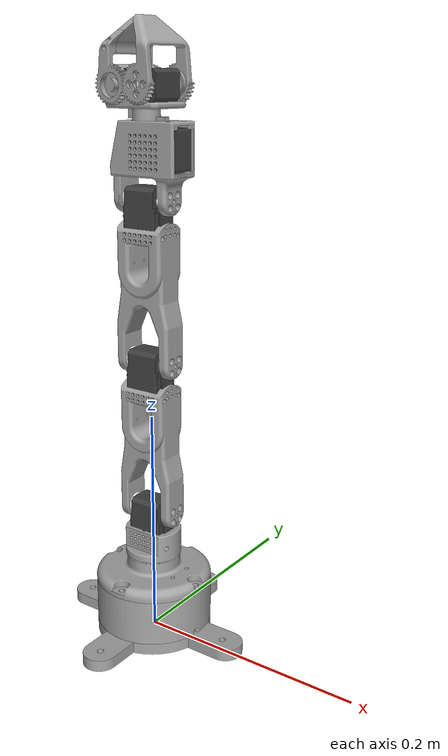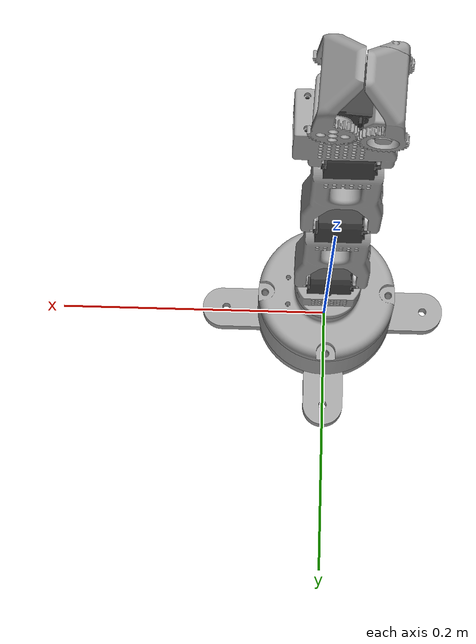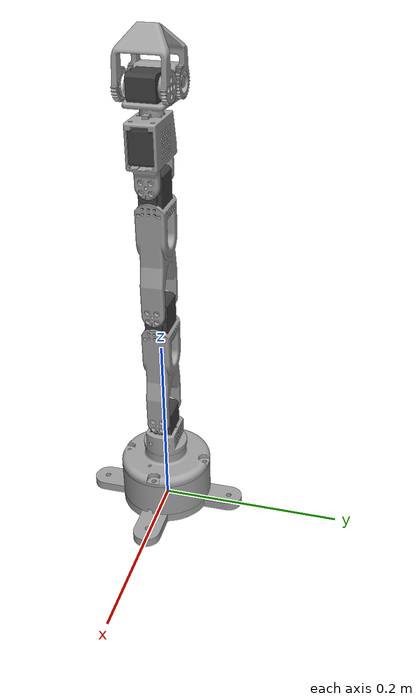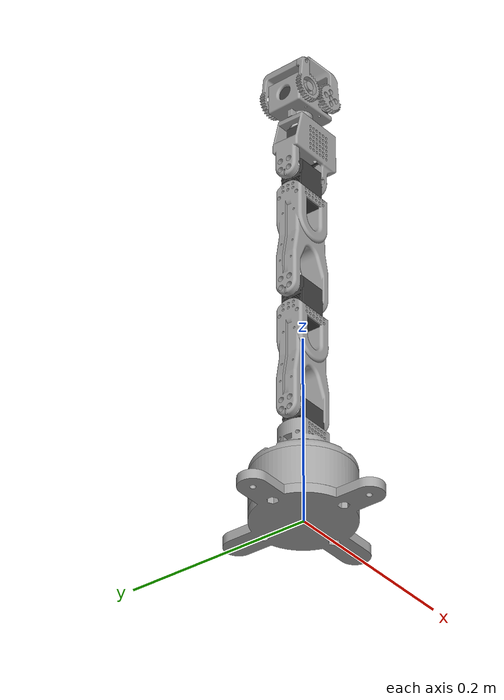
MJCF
<mujoco model="robot_urdf">
  <compiler angle="radian" meshdir="assets/"/>

  <default>
    <default class="jdcobot200_calib">
      <joint damping="1" frictionloss="0.1" armature="0.005"/>
      <position kp="50"/>
      <default class="visual">
        <geom type="mesh" contype="0" conaffinity="0" group="2"/>
      </default>
      <default class="collision">
        <geom contype="0" conaffinity="0" group="3"/>
      </default>
    </default>
  </default>

  <default>
    <default class="sts3215">
      <geom contype="0" conaffinity="0"/>
      <joint damping="0.60" frictionloss="0.052" armature="0.028" limited="true"/>
      <position kp="998.22" kv="2.731" forcerange="-2.94 2.94"/>
    </default>
    <default class="backlash">
      <joint damping="0.01" frictionloss="0" armature="0.01" limited="true" range="-0.008726646259971648 0.008726646259971648"/>
    </default>
  </default>

  <asset>
    <mesh name="base_top" content_type="model/stl" file="base_top.stl"/>
    <mesh name="ac1" content_type="model/stl" file="ac1.stl"/>
    <mesh name="base_plate" content_type="model/stl" file="base_plate.stl"/>
    <mesh name="base_link" content_type="model/stl" file="base_link.stl"/>
    <mesh name="main" content_type="model/stl" file="main.stl"/>
    <mesh name="base_joint" content_type="model/stl" file="base_joint.stl"/>
    <mesh name="ac2" content_type="model/stl" file="ac2.stl"/>
    <mesh name="shoulder_link" content_type="model/stl" file="shoulder_link.stl"/>
    <mesh name="arm_link" content_type="model/stl" file="arm_link.stl"/>
    <mesh name="wrist_link___recovered" content_type="model/stl" file="wrist_link___recovered.stl"/>
    <mesh name="gripper_base" content_type="model/stl" file="gripper_base.stl"/>
    <mesh name="gripper_left" content_type="model/stl" file="gripper_left.stl"/>
    <mesh name="gripper_right" content_type="model/stl" file="gripper_right.stl"/>
    <mesh name="gripper_right_part" content_type="model/stl" file="gripper_right_part.stl"/>
  </asset>

  <worldbody>
    <body name="base_assembly" pos="0 0 0" quat="1 0 0 0" childclass="jdcobot200_calib">
      <inertial pos="0 0 0" mass="0.35" diaginertia="1e-09 1e-09 1e-09"/>
      <geom pos="0.0125 0 0.05" quat="1 0 0 0" type="mesh" rgba="0.627451 0.627451 0.627451 1" mesh="base_top"/>
      <geom pos="0.0125 0 0.0351" quat="1.32679e-06 0 0 -1" type="mesh" rgba="0.960784 0.960784 0.964706 1" mesh="ac1"/>
      <geom type="mesh" rgba="0.627451 0.627451 0.627451 1" mesh="base_plate"/>
      <geom pos="0.0125 0 0" quat="1 0 0 0" type="mesh" rgba="0.627451 0.627451 0.627451 1" mesh="base_link"/>
      <geom pos="0.0125 0 0.0339" quat="1.32679e-06 0 0 1" type="mesh" rgba="0.247059 0.247059 0.247059 1" mesh="main"/>
      <body name="shoulder_assmebly" pos="0 0 0.0537" quat="1.76038e-12 1.32679e-06 -1 -1.32679e-06" childclass="sts3215">
        <inertial pos="0 0 0" mass="0.15" diaginertia="1e-09 1e-09 1e-09"/>
        <joint name="base" pos="0 0 0" axis="0 0 1" range="-3.14159 3.14159" actuatorfrcrange="-10 10"/>
        <geom quat="1.76037e-12 -1.32679e-06 -1 1.32679e-06" type="mesh" rgba="0.627451 0.627451 0.627451 1" mesh="base_joint"/>
        <geom pos="0.00015 0 -0.04896" quat="9.38184e-07 -0.707105 9.38187e-07 0.707108" type="mesh" rgba="0.247059 0.247059 0.247059 1" mesh="main"/>
        <geom pos="0.00075 0 -0.04896" quat="9.38184e-07 -0.707105 9.38187e-07 0.707108" type="mesh" rgba="0.960784 0.960784 0.964706 1" mesh="ac2"/>
        <geom pos="0 0 -0.0193" quat="1.76043e-12 -1.32679e-06 -1 1.32679e-06" type="mesh" rgba="0.627451 0.627451 0.627451 1" mesh="shoulder_link"/>
        <geom pos="0.0002 0 -0.04896" quat="9.38184e-07 -0.707105 9.38187e-07 0.707108" type="mesh" rgba="0.960784 0.960784 0.964706 1" mesh="ac1"/>
        <body name="arm_link_assembly" pos="0.0006 0 -0.06146" quat="9.38184e-07 -0.707105 9.38187e-07 0.707108">
          <inertial pos="0 0 0" mass="0.12" diaginertia="1e-09 1e-09 1e-09"/>
          <joint name="shoulder" pos="0 0 0" axis="0 0 1" range="-3.14159 3.14159" actuatorfrcrange="-10 10"/>
          <geom pos="0.1227 -8.02902e-05 -0.000296447" quat="1 0 0 0" type="mesh" rgba="0.960784 0.960784 0.964706 1" mesh="ac1"/>
          <geom pos="0.1227 -8.02902e-05 -0.000246447" quat="1 0 0 0" type="mesh" rgba="0.247059 0.247059 0.247059 1" mesh="main"/>
          <geom pos="0.053 -0.012 -9.64466e-05" quat="0.707105 -0.707108 0 0" type="mesh" rgba="0.627451 0.627451 0.627451 1" mesh="arm_link"/>
          <geom pos="0.1227 -8.02902e-05 -0.000846447" quat="1 0 0 0" type="mesh" rgba="0.960784 0.960784 0.964706 1" mesh="ac2"/>
          <body name="arm_link_assembly_2" pos="0.1352 -8.02902e-05 -0.000696447">
            <inertial pos="0 0 0" mass="0.129" diaginertia="1e-09 1e-09 1e-09"/>
            <joint name="elbow" pos="0 0 0" axis="0 0 1" range="-3.14159 3.14159" actuatorfrcrange="-10 10"/>
            <geom pos="0.1227 -8.02902e-05 3.44557e-05" quat="1 0 0 0" type="mesh" rgba="0.960784 0.960784 0.964706 1" mesh="ac1"/>
            <geom pos="0.1227 -8.02902e-05 8.44557e-05" quat="1 0 0 0" type="mesh" rgba="0.247059 0.247059 0.247059 1" mesh="main"/>
            <geom pos="0.053 -0.012 0.000234456" quat="0.707105 -0.707108 0 0" type="mesh" rgba="0.627451 0.627451 0.627451 1" mesh="arm_link"/>
            <geom pos="0.1227 -8.02902e-05 -0.000515544" quat="1 0 0 0" type="mesh" rgba="0.960784 0.960784 0.964706 1" mesh="ac2"/>
            <body name="wrist_assembly" pos="0.1352 -8.02902e-05 -0.000365544" quat="1.32679e-06 1 0 0">
              <inertial pos="0 0 0" mass="0.08" diaginertia="1e-09 1e-09 1e-09"/>
              <joint name="wrist_pitch" pos="0 0 0" axis="0 0 1" range="-3.14159 3.14159" actuatorfrcrange="-10 10"/>
              <geom pos="0.0389 0.00681535 -0.0104786" quat="0.201065 -0.677917 0.20107 -0.677917" type="mesh" rgba="0.960784 0.960784 0.964706 1" mesh="ac1"/>
              <geom pos="0.055 -0.012 0" quat="0.707105 -0.707108 0 0" type="mesh" rgba="0.627451 0.627451 0.627451 1" mesh="wrist_link___recovered"/>
              <geom pos="0.0392 0 -0.0125" quat="9.38184e-07 -0.707105 -9.38187e-07 -0.707108" type="mesh" rgba="0.247059 0.247059 0.247059 1" mesh="main"/>
              <body name="gripper_assembly" pos="0.0575 0 0" quat="0.677917 0.201067 -0.677918 -0.201067">
                <inertial pos="0 0 0" mass="0.015" diaginertia="1e-09 1e-09 1e-09"/>
                <joint name="wrist_roll" pos="0 0 0" axis="0 0 1" range="-3.14159 3.14159" actuatorfrcrange="-10 10"/>
                <geom pos="-0.0109248 0.0149298 -0.0300671" quat="0.672125 0.672127 0.219651 0.21965" type="mesh" rgba="0.627451 0.627451 0.627451 1" mesh="gripper_base"/>
                <geom pos="0.000413372 -0.00056491 -0.0300671" quat="0.219652 -0.219653 0.672127 -0.672124" type="mesh" rgba="0.247059 0.247059 0.247059 1" mesh="main"/>
                <geom pos="0.000236213 -0.000322806 -0.0300671" quat="0.219652 -0.219653 0.672127 -0.672124" type="mesh" rgba="0.960784 0.960784 0.964706 1" mesh="ac1"/>
                <geom pos="5.90532e-05 -8.07014e-05 -0.0300671" quat="0.219652 -0.219653 0.672127 -0.672124" type="mesh" rgba="0.960784 0.960784 0.964706 1" mesh="ac2"/>
                <body name="gripper_left_assembly" pos="0.00133856 -0.0245467 -0.0309825" quat="0.219652 0.219653 -0.672127 -0.672124">
                  <inertial pos="0 0 0" mass="0.015" diaginertia="1e-09 1e-09 1e-09"/>
                  <joint name="gripper_left" pos="0 0 0" axis="0 0 1" range="-3.14159 3.14159" ref="-0.57"  actuatorfrcrange="-10 10"/>
                  <geom pos="0 0 0.0453" quat="1.32679e-06 -1 0 0" type="mesh" rgba="0.627451 0.627451 0.627451 1" mesh="gripper_left"/>
                </body>
                <body name="gripper_right_assembly" pos="0.0270171 -0.0105891 -0.0300671" quat="0.672125 -0.672127 -0.219651 0.21965">
                  <inertial pos="0 0 0" mass="0.015" diaginertia="1e-09 1e-09 1e-09"/>
                  <joint name="gripper_right" pos="0 0 0" axis="0 0 1" range="-3.14159 3.14159" ref="0.57" actuatorfrcrange="-10 10"/>
                  <geom pos="0 0 0.051019" quat="1.76038e-12 -1.32679e-06 -1 1.32679e-06" type="mesh" rgba="0.627451 0.627451 0.627451 1" mesh="gripper_right"/>
                  <geom pos="0.0509419 0 0" quat="1 0 0 0" type="mesh" rgba="0.627451 0.627451 0.627451 1" mesh="gripper_right_part"/>
                </body>
              </body>
            </body>
          </body>
        </body>
      </body>
    </body>
  </worldbody>
  <!-- 그리퍼 연동: 양쪽 그리퍼가 기어애 맞물려 동작하도록 셋팅 -->
  <equality>
    <joint joint1="gripper_right" joint2="gripper_left" polycoef="0 -1 0 0 0"/>
  </equality>

   <actuator>
    <position class="sts3215" name="base" joint="base" forcerange="-3.35 3.35" ctrlrange="-1.91986 1.91986"/>
    <position class="sts3215" name="shoulder" joint="shoulder" forcerange="-3.35 3.35" ctrlrange="-1.74533 1.74533"/>
    <position class="sts3215" name="elbow" joint="elbow" forcerange="-3.35 3.35" ctrlrange="-1.69 1.69"/>
    <position class="sts3215" name="wrist_pitch" joint="wrist_pitch" forcerange="-3.35 3.35" ctrlrange="-1.65806 1.65806"/>
    <position class="sts3215" name="wrist_roll" joint="wrist_roll" forcerange="-3.35 3.35" ctrlrange="-2.74385 2.84121"/>
    <position class="sts3215" name="gripper_motor" joint="gripper_left" ctrlrange="-1.5 1.5" kp="50"/>
  </actuator>

</mujoco>
